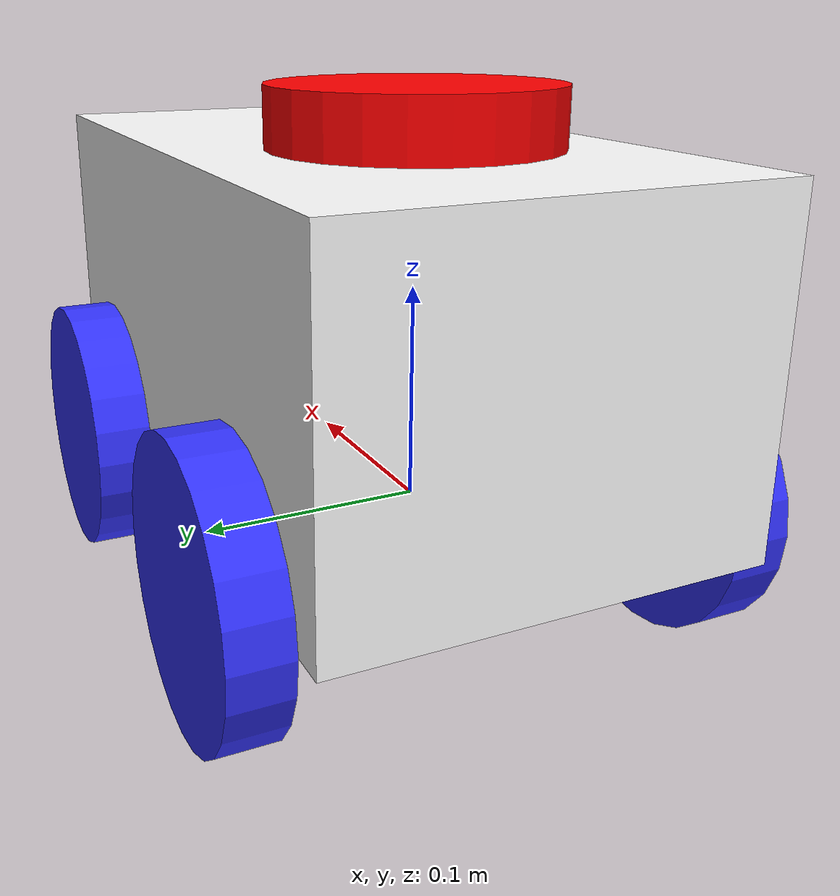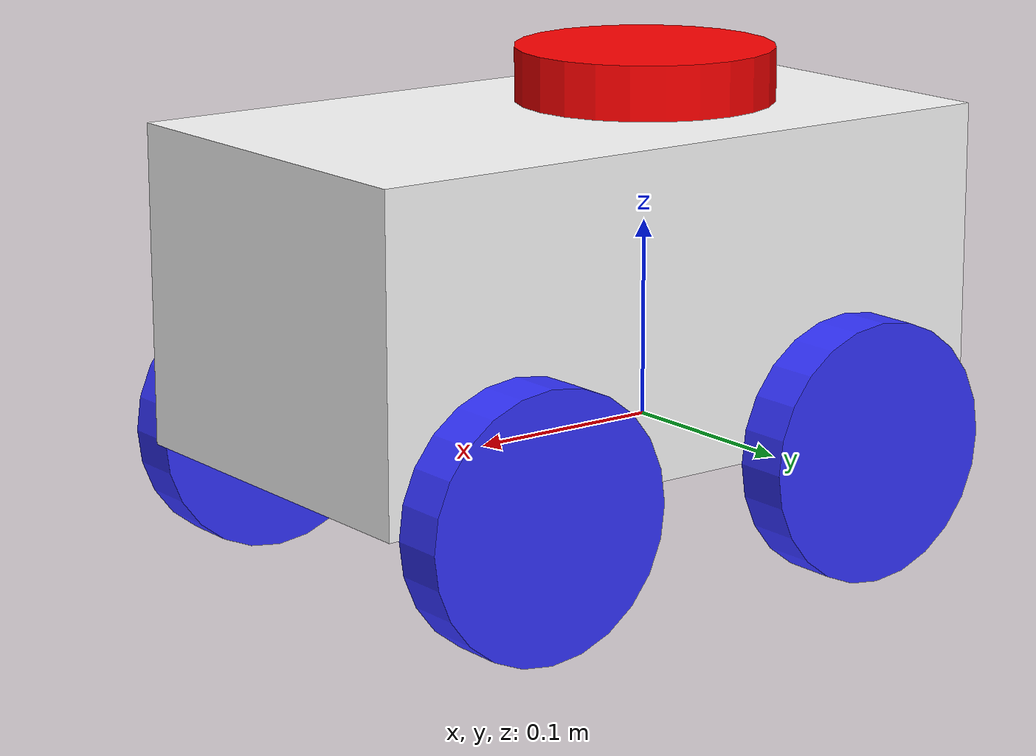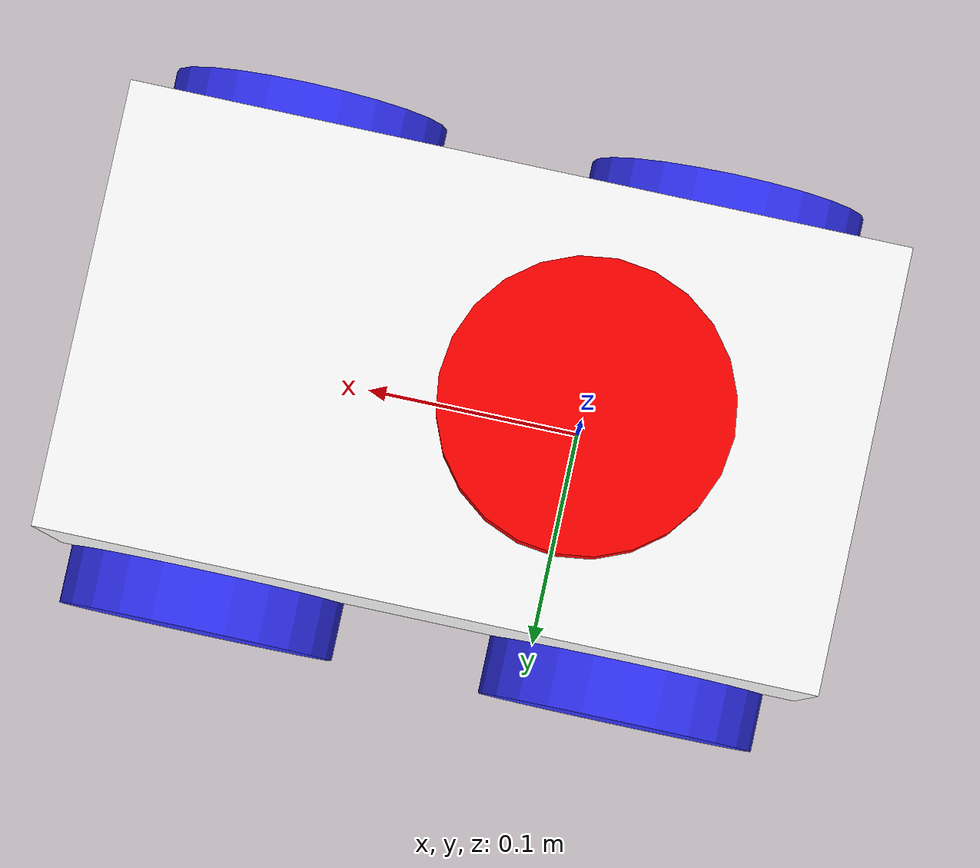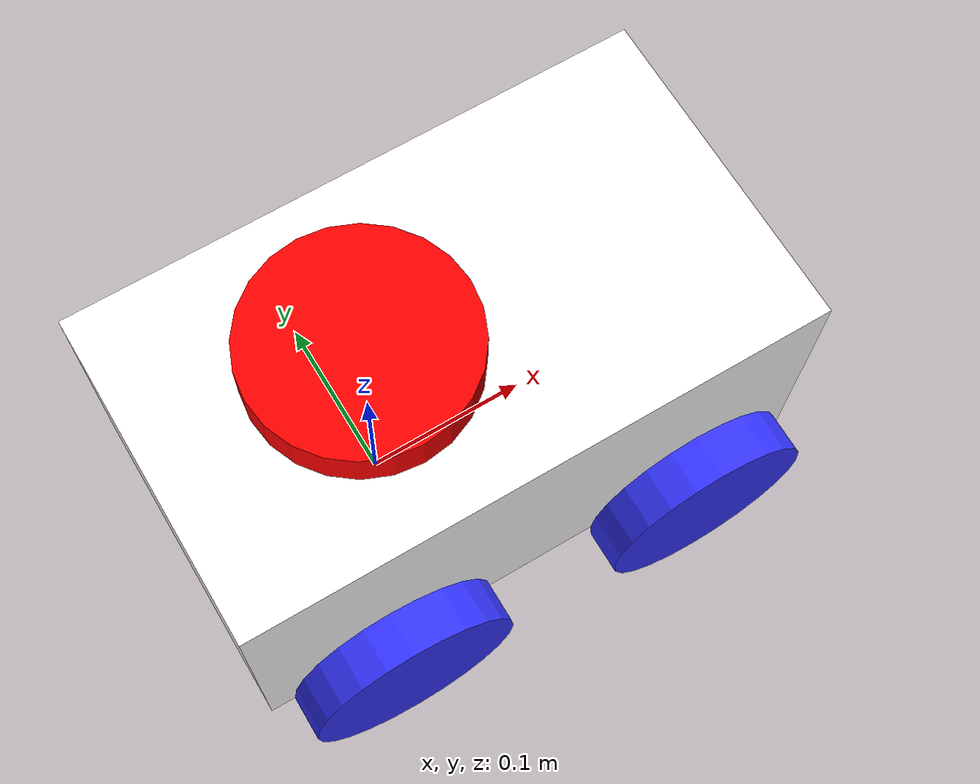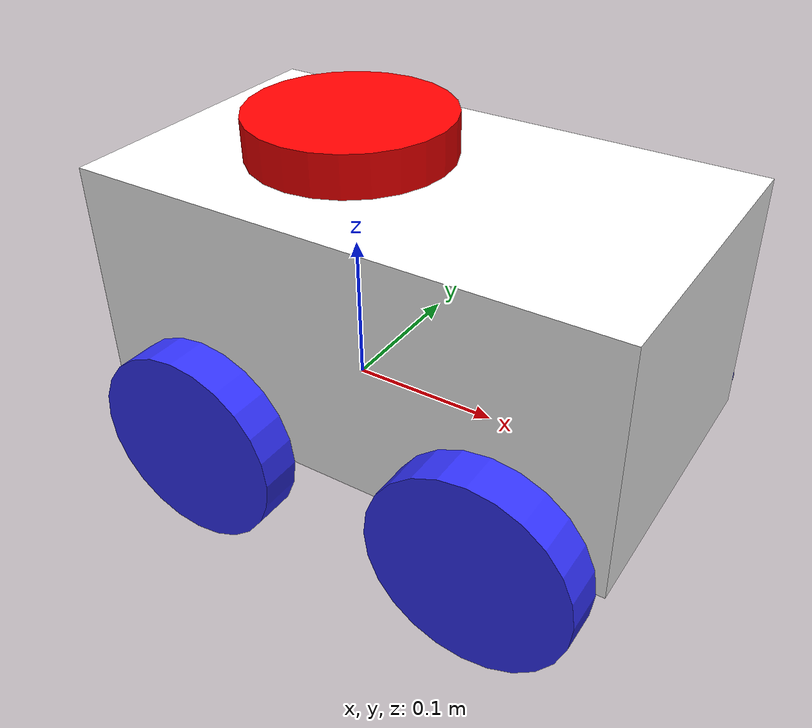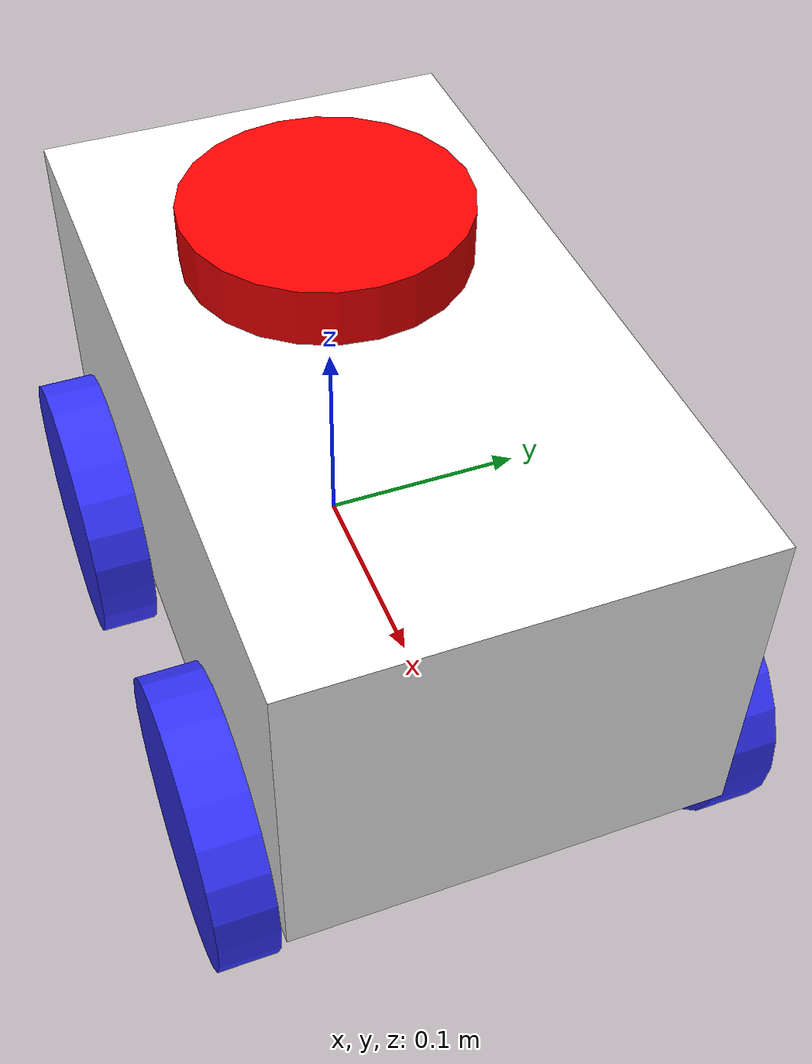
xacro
<?xml version="1.0"?>
<robot xmlns:xacro="http://www.ros.org/wiki/xacro"  name="robot">

    <xacro:arg name="use_ros2_control" default="true"/><!--if control using gazebo_control, switch to false-->
    <xacro:arg name="sim_mode" default="false"/> <!--if run real robot, switch to false-->

    <xacro:include filename="robot_core.xacro" />

    <xacro:if value="$(arg use_ros2_control)">
        <xacro:include filename="ros2_control.xacro" />
    </xacro:if>
    <xacro:unless value="$(arg use_ros2_control)">
        <xacro:include filename="gazebo_control.xacro" />
    </xacro:unless>
    <xacro:include filename="lidar.xacro" />

</robot>

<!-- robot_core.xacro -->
<robot xmlns:xacro="http://www.ros.org/wiki/xacro" >
    <xacro:include filename="inertial_macros.xacro" />

    <xacro:property name="chassis_length" value="0.35"/>
    <xacro:property name="chassis_width" value="0.2"/>
    <xacro:property name="chassis_height" value="0.16"/>
    <xacro:property name="chassis_mass" value="5"/>
    <xacro:property name="wheel_radius" value="0.065"/>
    <xacro:property name="wheel_thickness" value="0.027"/>
    <xacro:property name="wheel_mass" value="0.5"/>
    <xacro:property name="wheel_offset_x" value="0.226"/>
    <xacro:property name="wheel_offset_y" value="0.114"/>
    <xacro:property name="wheel_offset_z" value="-0.01"/>
    <xacro:property name="chassis_offset_x" value="0.15"/>
    <xacro:property name="chassis_offset_y" value="0"/>
    <xacro:property name="chassis_offset_z" value="0.08"/>
    <xacro:property name="front_offset_x" value="0.155"/>
    <xacro:property name="back_offset_x" value="0.045"/>
    <material name="white">
        <color rgba="1 1 1 1"/>
    </material>

    <material name="orange">
        <color rgba="1 0.3 0.1 1"/>
    </material>

    <material name="red">
        <color rgba="1 0 0 1"/>
    </material>

    <material name="blue">
        <color rgba="0.2 0.2 1 1"/>
    </material>

    <material name="black">
        <color rgba="0 0 0 1"/>
    </material>

    <material name="gray">
        <color rgba="0.7 0.63 0.66 0"/>
    </material>
    <!--base_link-->
    <link name="base_footprint">

    </link>

    <!-- BASE_FOOTPRINT LINK -->

    <joint name="base_footprint_joint" type="fixed">
        <parent link="base_footprint"/>
        <child link="base_link"/>
        <origin xyz="0 0 0" rpy="0 0 0"/>
    </joint>

    <link name="base_link">
    </link>

    <!--chassy_link-->
    <joint name="chassis_joint" type="fixed">
        <parent link="base_link"/>
        <child link="chassis"/>
        <origin xyz= "-0.1 0 0"/>
    </joint>
    <link name="chassis">
        <visual>
            <origin xyz="${chassis_offset_x} ${chassis_offset_y} ${chassis_offset_z}"/>
            <geometry>
                <box size="${chassis_length} ${chassis_width} ${chassis_height}"/>
            </geometry>
            <material name="white"/>
        </visual>
        <collision>
            <origin xyz="${chassis_offset_x} ${chassis_offset_y} ${chassis_offset_z}"/>
            <geometry>
                <box size="${chassis_length} ${chassis_width} ${chassis_height}"/>
            </geometry>
        </collision>
        <xacro:inertial_box mass="${chassis_mass}" x="${chassis_length}" y="${chassis_width}" z="${chassis_height}">
            <origin xyz="${chassis_length/2} 0 ${chassis_height/2}" rpy="0 0 0"/>
        </xacro:inertial_box>
    </link>
    <gazebo reference="chassis">
        <material>Gazebo/White</material>
    </gazebo>
    <!--LEFT_FRONT_WHEEL_LINK-->

    <joint name="left_front_wheel_joint" type="continuous">
        <parent link="base_link"/>
        <child link="left_front_wheel"/>
        <origin xyz="${front_offset_x} ${wheel_offset_y} 0" rpy="-${pi/2} 0 0"/>
        <axis xyz="0 0 1"/>
    </joint>
    <link name="left_front_wheel">
        <visual>
            <geometry>
                <cylinder radius="${wheel_radius}" length="${wheel_thickness}"/>
            </geometry>
            <material name="blue"/>
        </visual>
        <collision>
            <geometry>
                <cylinder radius="${wheel_radius}" length="${wheel_thickness}"/>
            </geometry>
        </collision>
            <xacro:inertial_cylinder mass="${wheel_mass}" length="${wheel_thickness}" radius="${wheel_radius}">
                <origin xyz="0 0 0" rpy="0 0 0"/>
            </xacro:inertial_cylinder>
    </link>
    <gazebo reference="left_front_wheel">
        <material>Gazebo/Blue</material>
    </gazebo>
    <!--RIGHT_FRONT_WHEEL_LINK-->
    <joint name="right_front_wheel_joint" type="continuous">
        <parent link="base_link"/>
        <child link="right_front_wheel"/>
        <origin xyz="${front_offset_x} ${-wheel_offset_y} 0" rpy="${pi/2} 0 0"/>
        <axis xyz="0 0 -1"/>
    </joint>
    <link name="right_front_wheel">
        <visual>
            <geometry>
                <cylinder radius="${wheel_radius}" length="${wheel_thickness}"/>
            </geometry>
            <material name="blue"/>
        </visual>
        <collision>
            <geometry>
                <cylinder radius="${wheel_radius}" length="${wheel_thickness}"/>
            </geometry>
        </collision>
            <xacro:inertial_cylinder mass="${wheel_mass}" length="${wheel_thickness}" radius="${wheel_radius}">
                <origin xyz="0 0 0" rpy="0 0 0"/>
            </xacro:inertial_cylinder>
    </link>
    <gazebo reference="right_front_wheel">
        <material>Gazebo/Blue</material>
    </gazebo>
    <!--LEFT_BACK_WHEEL_LINK-->
    <joint name="left_back_wheel_joint" type="continuous">
        <parent link="base_link"/>
        <child link="left_back_wheel"/>
        <origin xyz="${-back_offset_x} ${wheel_offset_y} 0" rpy="-${pi/2} 0 0"/>
        <axis xyz="0 0 1"/>
    </joint>
    <link name="left_back_wheel">
        <visual>
            <geometry>
                <cylinder radius="${wheel_radius}" length="${wheel_thickness}"/>
            </geometry>
            <material name="blue"/>
        </visual>
        <collision>
            <geometry>
                <cylinder radius="${wheel_radius}" length="${wheel_thickness}"/>
            </geometry>
        </collision>
            <xacro:inertial_cylinder mass="${wheel_mass}" length="${wheel_thickness}" radius="${wheel_radius}">
                <origin xyz="0 0 0" rpy="0 0 0"/>
            </xacro:inertial_cylinder>
    </link>
    <gazebo reference="left_back_wheel">
        <material>Gazebo/Blue</material>
    </gazebo>
    <!--RIGHT_BACK_WHEEL_LINK-->
    <joint name="right_back_wheel_joint" type="continuous">
        <parent link="base_link"/>
        <child link="right_back_wheel"/>
        <origin xyz="${-back_offset_x} ${-wheel_offset_y} 0" rpy="${pi/2} 0 0"/>
        <axis xyz="0 0 -1"/>
    </joint>
    <link name="right_back_wheel">
        <visual>
            <geometry>
                <cylinder radius="${wheel_radius}" length="${wheel_thickness}"/>
            </geometry>
            <material name="blue"/>
        </visual>
        <collision>
            <geometry>
                <cylinder radius="${wheel_radius}" length="${wheel_thickness}"/>
            </geometry>
        </collision>
            <xacro:inertial_cylinder mass="${wheel_mass}" length="${wheel_thickness}" radius="${wheel_radius}">
                <origin xyz="0 0 0" rpy="0 0 0"/>
            </xacro:inertial_cylinder>
    </link>
    <gazebo reference="right_back_wheel">
        <material>Gazebo/Blue</material>
    </gazebo>
</robot>

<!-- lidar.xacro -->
<robot xmlns:xacro="http://www.ros.org/wiki/xacro" >
    <joint name="laser_joint" type="fixed">
    <parent link="chassis"/>
    <child link="laser_frame"/>
    <origin xyz="0.1 0 0.175" rpy="0 0 0"/>
    </joint>
    <link name="laser_frame">
        <visual>
            <geometry>
                <cylinder radius="0.065" length="0.027"/>
            </geometry>
            <material name="red"/>
        </visual>
        <collision>
            <geometry>
                <cylinder radius="0.065" length="0.027"/>
            </geometry>
        </collision>
            <xacro:inertial_cylinder mass="0.1" length="0.027" radius="0.065">
                <origin xyz="0 0 0" rpy="0 0 0"/>
            </xacro:inertial_cylinder>
    </link>
    <gazebo reference="laser_frame">
        <material>Gazebo/Red</material>

        <sensor name="laser" type="gpu_lidar">
            <pose>0 0 0 0 0 0</pose>
            <visualize>true</visualize>
            <update_rate>10</update_rate>
            <ray>
                <scan>
                    <horizontal>
                        <samples>360</samples><!-- maybe not use -->
                        <min_angle>-3.14</min_angle>
                        <max_angle>3.14</max_angle>
                    </horizontal>
                </scan>
                <range>
                    <min>0.3</min>
                    <max>12</max>
                </range><!-- maybe not use -->
            </ray>
            <topic>/scan</topic>
            <gz_frame_id>laser_frame</gz_frame_id>
        </sensor>
    </gazebo>
</robot>
